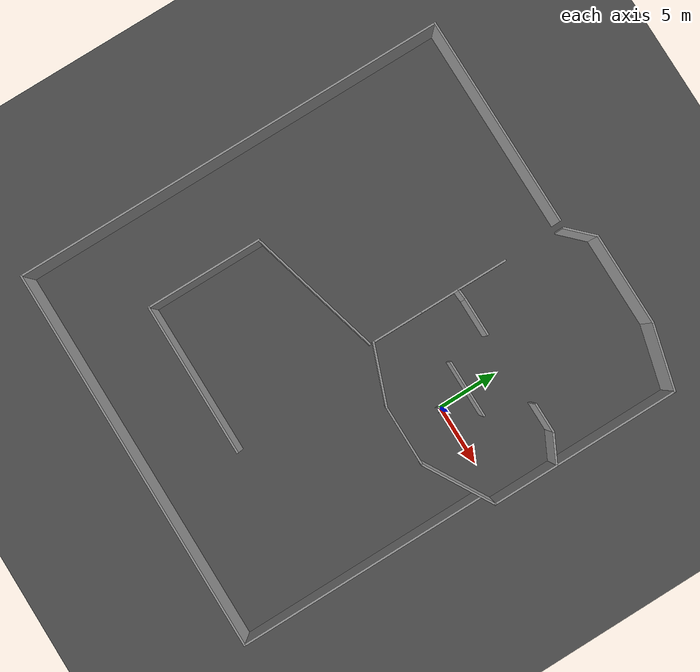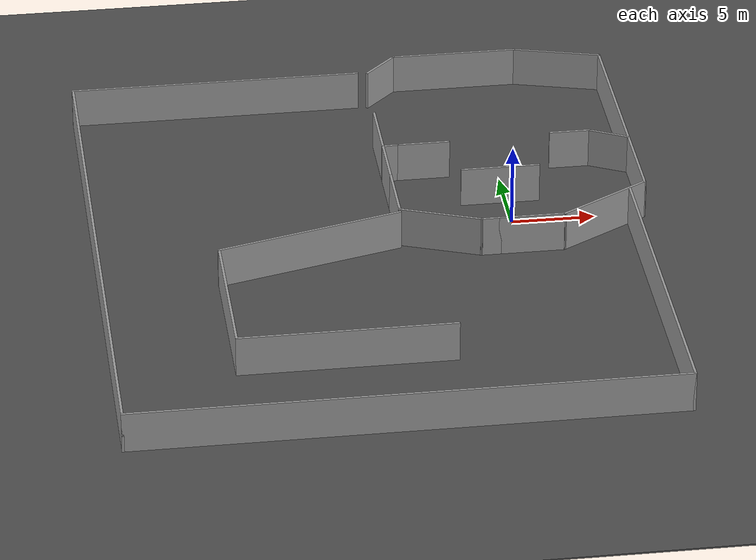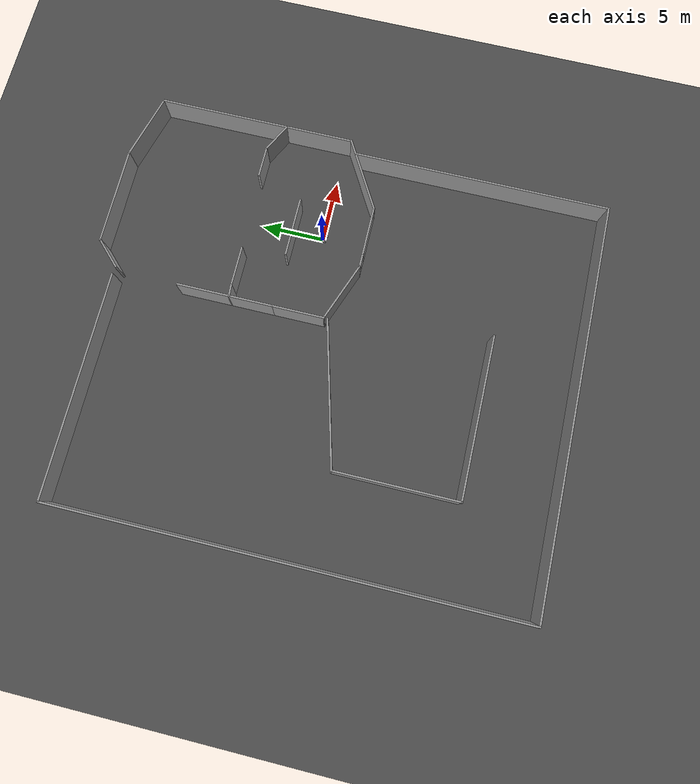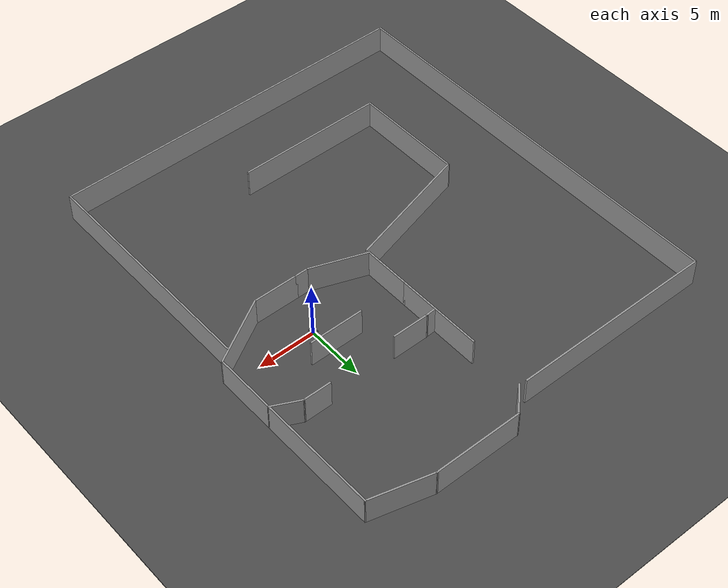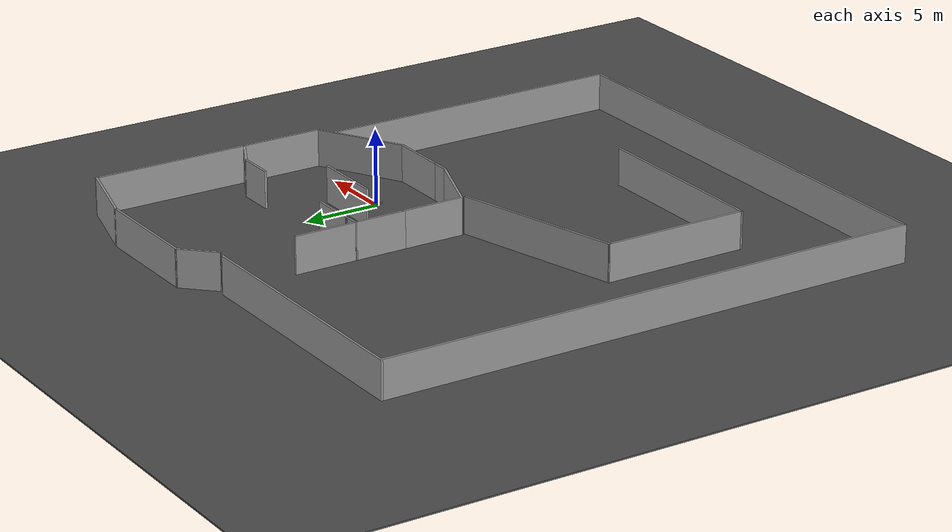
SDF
<sdf version="1.6">
 <world name="default">
  <light name="sun" type="directional">
   <pose>0 0 10 0 -0 0</pose>
   <diffuse>0.8 0.8 0.8 1</diffuse>
   <specular>0.2 0.2 0.2 1</specular>
   <attenuation>
    <range>1000</range>
    <constant>0.9</constant>
    <linear>0.01</linear>
    <quadratic>0.001</quadratic>
   </attenuation>
   <direction>-0.5 0.1 -0.9</direction>
  </light>
  <include><uri>model://maav_matrice</uri><pose>0 0 0.25 0 0 1.57</pose></include>
  <model name="asphalt_plane">
   <static>1</static>
   <link name="link">
    <collision name="collision"><geometry><box><size>200 200 0.1</size></box></geometry></collision>
    <visual name="visual">
     <cast_shadows>0</cast_shadows>
     <geometry><box><size>200 200 0.1</size></box></geometry>
     <material>
      <script>
       <uri>model://asphalt_plane/materials/scripts</uri>
       <uri>model://asphalt_plane/materials/textures</uri>
       <name>vrc/asphalt</name>
      </script>
     </material>
    </visual>
   </link>
  </model>
  <physics name="default_physics" default="0" type="ode">
   <ode>
    <solver>
     <type>quick</type>
     <iters>10</iters>
     <sor>1.3</sor>
     <use_dynamic_moi_rescaling>0</use_dynamic_moi_rescaling>
    </solver>
    <constraints>
     <cfm>0</cfm>
     <erp>0.2</erp>
     <contact_max_correcting_vel>100</contact_max_correcting_vel>
     <contact_surface_layer>0.001</contact_surface_layer>
    </constraints>
   </ode>
   <max_step_size>0.001</max_step_size>
   <real_time_factor>1</real_time_factor>
   <real_time_update_rate>1000</real_time_update_rate>
  </physics>
  <gravity>0 0 -9.8066</gravity>
  <magnetic_field>6e-06 2.3e-05 -4.2e-05</magnetic_field>
  <atmosphere type="adiabatic"/>
  <scene><ambient>0.4 0.4 0.4 1</ambient><background>0.7 0.7 0.7 1</background><shadows>1</shadows></scene>
  <spherical_coordinates>
   <surface_model>EARTH_WGS84</surface_model>
   <latitude_deg>0</latitude_deg>
   <longitude_deg>0</longitude_deg>
   <elevation>0</elevation>
   <heading_deg>0</heading_deg>
  </spherical_coordinates>
  <model name="building-astar">
   <pose>-8.55118 -2.42156 0 0 -0 0</pose>
   <link name="Wall_10">
    <collision name="Wall_10_Collision">
     <geometry><box><size>4.75 0.15 2.5</size></box></geometry>
     <pose>0 0 1.25 0 -0 0</pose>
    </collision>
    <visual name="Wall_10_Visual">
     <pose>0 0 1.25 0 -0 0</pose>
     <geometry><box><size>4.75 0.15 2.5</size></box></geometry>
     <material>
      <script><uri>file://media/materials/scripts/gazebo.material</uri><name>Gazebo/Grey</name></script>
      <ambient>1 1 1 1</ambient>
     </material>
     <meta><layer>0</layer></meta>
    </visual>
    <pose>8.17826 4.71013 0 0 -0 0</pose>
   </link>
   <link name="Wall_12">
    <collision name="Wall_12_Collision">
     <geometry><box><size>4.25 0.15 2.5</size></box></geometry>
     <pose>0 0 1.25 0 -0 0</pose>
    </collision>
    <visual name="Wall_12_Visual">
     <pose>0 0 1.25 0 -0 0</pose>
     <geometry><box><size>4.25 0.15 2.5</size></box></geometry>
     <material>
      <script><uri>file://media/materials/scripts/gazebo.material</uri><name>Gazebo/Grey</name></script>
      <ambient>1 1 1 1</ambient>
     </material>
     <meta><layer>0</layer></meta>
    </visual>
    <pose>1.56027 2.68014 0 0 -0 -1.5708</pose>
   </link>
   <link name="Wall_13">
    <collision name="Wall_13_Collision">
     <geometry><box><size>5.08364 0.15 2.5</size></box></geometry>
     <pose>0 0 1.25 0 -0 0</pose>
    </collision>
    <visual name="Wall_13_Visual">
     <pose>0 0 1.25 0 -0 0</pose>
     <geometry><box><size>5.08364 0.15 2.5</size></box></geometry>
     <material>
      <script><uri>file://media/materials/scripts/gazebo.material</uri><name>Gazebo/Grey</name></script>
      <ambient>1 1 1 1</ambient>
     </material>
     <meta><layer>0</layer></meta>
    </visual>
    <pose>3.87072 -0.234148 0 0 -0 -0.357963</pose>
   </link>
   <link name="Wall_15">
    <collision name="Wall_15_Collision">
     <geometry><box><size>6.25 0.15 2.5</size></box></geometry>
     <pose>0 0 1.25 0 -0 0</pose>
    </collision>
    <visual name="Wall_15_Visual">
     <pose>0 0 1.25 0 -0 0</pose>
     <geometry><box><size>6.25 0.15 2.5</size></box></geometry>
     <material>
      <script><uri>file://media/materials/scripts/gazebo.material</uri><name>Gazebo/Grey</name></script>
      <ambient>1 1 1 1</ambient>
     </material>
     <meta><layer>0</layer></meta>
    </visual>
    <pose>13.7726 0.42656 0 0 -0 0.523599</pose>
   </link>
   <link name="Wall_16">
    <collision name="Wall_16_Collision">
     <geometry><box><size>5.5 0.15 2.5</size></box></geometry>
     <pose>0 0 1.25 0 -0 0</pose>
    </collision>
    <visual name="Wall_16_Visual">
     <pose>0 0 1.25 0 -0 0</pose>
     <geometry><box><size>5.5 0.15 2.5</size></box></geometry>
     <material>
      <script><uri>file://media/materials/scripts/gazebo.material</uri><name>Gazebo/Grey</name></script>
      <ambient>1 1 1 1</ambient>
     </material>
     <meta><layer>0</layer></meta>
    </visual>
    <pose>16.4139 4.62656 0 0 -0 1.5708</pose>
   </link>
   <link name="Wall_18">
    <collision name="Wall_18_Collision">
     <geometry><box><size>2.5 0.15 2.5</size></box></geometry>
     <pose>0 0 1.25 0 -0 0</pose>
    </collision>
    <visual name="Wall_18_Visual">
     <pose>0 0 1.25 0 -0 0</pose>
     <geometry><box><size>2.5 0.15 2.5</size></box></geometry>
     <material>
      <script><uri>file://media/materials/scripts/gazebo.material</uri><name>Gazebo/Grey</name></script>
      <ambient>1 1 1 1</ambient>
     </material>
     <meta><layer>0</layer></meta>
    </visual>
    <pose>13.0075 8.42391 0 0 -0 0</pose>
   </link>
   <link name="Wall_20">
    <collision name="Wall_20_Collision">
     <geometry><box><size>3.25 0.15 2.5</size></box></geometry>
     <pose>0 0 1.25 0 -0 0</pose>
    </collision>
    <visual name="Wall_20_Visual">
     <pose>0 0 1.25 0 -0 0</pose>
     <geometry><box><size>3.25 0.15 2.5</size></box></geometry>
     <material>
      <script><uri>file://media/materials/scripts/gazebo.material</uri><name>Gazebo/Grey</name></script>
      <ambient>1 1 1 1</ambient>
     </material>
     <meta><layer>0</layer></meta>
    </visual>
    <pose>3.98974 8.14248 0 0 -0 0</pose>
   </link>
   <link name="Wall_22">
    <collision name="Wall_22_Collision">
     <geometry><box><size>3.5 0.15 2.5</size></box></geometry>
     <pose>0 0 1.25 0 -0 0</pose>
    </collision>
    <visual name="Wall_22_Visual">
     <pose>0 0 1.25 0 -0 0</pose>
     <geometry><box><size>3.5 0.15 2.5</size></box></geometry>
     <material>
      <script><uri>file://media/materials/scripts/gazebo.material</uri><name>Gazebo/Grey</name></script>
      <ambient>1 1 1 1</ambient>
     </material>
     <meta><layer>0</layer></meta>
    </visual>
    <pose>1.56027 6.40514 0 0 -0 1.5708</pose>
   </link>
   <link name="Wall_23">
    <collision name="Wall_23_Collision">
     <geometry><box><size>1.03168 0.15 2.5</size></box></geometry>
     <pose>0 0 1.25 0 -0 0</pose>
    </collision>
    <visual name="Wall_23_Visual">
     <pose>0 0 1.25 0 -0 0</pose>
     <geometry><box><size>1.03168 0.15 2.5</size></box></geometry>
     <material>
      <script><uri>file://media/materials/scripts/gazebo.material</uri><name>Gazebo/Grey</name></script>
      <ambient>1 1 1 1</ambient>
     </material>
     <meta><layer>0</layer></meta>
    </visual>
    <pose>2.00001 8.11131 0 0 -0 0.070765</pose>
   </link>
   <link name="Wall_25">
    <collision name="Wall_25_Collision">
     <geometry><box><size>2.64782 0.15 2.5</size></box></geometry>
     <pose>0 0 1.25 0 -0 0</pose>
    </collision>
    <visual name="Wall_25_Visual">
     <pose>0 0 1.25 0 -0 0</pose>
     <geometry><box><size>2.64782 0.15 2.5</size></box></geometry>
     <material>
      <script><uri>file://media/materials/scripts/gazebo.material</uri><name>Gazebo/Grey</name></script>
      <ambient>1 1 1 1</ambient>
     </material>
     <meta><layer>0</layer></meta>
    </visual>
    <pose>15.2982 7.86274 0 0 -0 -0.466019</pose>
   </link>
   <link name="Wall_27">
    <collision name="Wall_27_Collision">
     <geometry><box><size>4.25 0.15 2.5</size></box></geometry>
     <pose>0 0 1.25 0 -0 0</pose>
    </collision>
    <visual name="Wall_27_Visual">
     <pose>0 0 1.25 0 -0 0</pose>
     <geometry><box><size>4.25 0.15 2.5</size></box></geometry>
     <material>
      <script><uri>file://media/materials/scripts/gazebo.material</uri><name>Gazebo/Grey</name></script>
      <ambient>1 1 1 1</ambient>
     </material>
     <meta><layer>0</layer></meta>
    </visual>
    <pose>1.56027 10.1301 0 0 -0 1.5708</pose>
   </link>
   <link name="Wall_29">
    <collision name="Wall_29_Collision">
     <geometry><box><size>10.5 0.15 2.5</size></box></geometry>
     <pose>0 0 1.25 0 -0 0</pose>
    </collision>
    <visual name="Wall_29_Visual">
     <pose>0 0 1.25 0 -0 0</pose>
     <geometry><box><size>10.5 0.15 2.5</size></box></geometry>
     <material>
      <script><uri>file://media/materials/scripts/gazebo.material</uri><name>Gazebo/Grey</name></script>
      <ambient>1 1 1 1</ambient>
     </material>
     <meta><layer>0</layer></meta>
    </visual>
    <pose>16.4139 12.4766 0 0 -0 1.5708</pose>
   </link>
   <link name="Wall_30">
    <collision name="Wall_30_Collision">
     <geometry><box><size>5.5 0.15 2.5</size></box></geometry>
     <pose>0 0 1.25 0 -0 0</pose>
    </collision>
    <visual name="Wall_30_Visual">
     <pose>0 0 1.25 0 -0 0</pose>
     <geometry><box><size>5.5 0.15 2.5</size></box></geometry>
     <material>
      <script><uri>file://media/materials/scripts/gazebo.material</uri><name>Gazebo/Grey</name></script>
      <ambient>1 1 1 1</ambient>
     </material>
     <meta><layer>0</layer></meta>
    </visual>
    <pose>13.8301 18.3439 0 0 -0 2.87979</pose>
   </link>
   <link name="Wall_31">
    <collision name="Wall_31_Collision">
     <geometry><box><size>7.75 0.15 2.5</size></box></geometry>
     <pose>0 0 1.25 0 -0 0</pose>
    </collision>
    <visual name="Wall_31_Visual">
     <pose>0 0 1.25 0 -0 0</pose>
     <geometry><box><size>7.75 0.15 2.5</size></box></geometry>
     <material>
      <script><uri>file://media/materials/scripts/gazebo.material</uri><name>Gazebo/Grey</name></script>
      <ambient>1 1 1 1</ambient>
     </material>
     <meta><layer>0</layer></meta>
    </visual>
    <pose>7.44623 19.0362 0 0 -0 3.14159</pose>
   </link>
   <link name="Wall_32">
    <collision name="Wall_32_Collision">
     <geometry><box><size>2.75 0.15 2.5</size></box></geometry>
     <pose>0 0 1.25 0 -0 0</pose>
    </collision>
    <visual name="Wall_32_Visual">
     <pose>0 0 1.25 0 -0 0</pose>
     <geometry><box><size>2.75 0.15 2.5</size></box></geometry>
     <material>
      <script><uri>file://media/materials/scripts/gazebo.material</uri><name>Gazebo/Grey</name></script>
      <ambient>1 1 1 1</ambient>
     </material>
     <meta><layer>0</layer></meta>
    </visual>
    <pose>2.72699 18.117 0 0 -0 -2.35619</pose>
   </link>
   <link name="Wall_34">
    <collision name="Wall_34_Collision">
     <geometry><box><size>17.75 0.15 2.5</size></box></geometry>
     <pose>0 0 1.25 0 -0 0</pose>
    </collision>
    <visual name="Wall_34_Visual">
     <pose>0 0 1.25 0 -0 0</pose>
     <geometry><box><size>17.75 0.15 2.5</size></box></geometry>
     <material>
      <script><uri>file://media/materials/scripts/gazebo.material</uri><name>Gazebo/Grey</name></script>
      <ambient>1 1 1 1</ambient>
     </material>
     <meta><layer>0</layer></meta>
    </visual>
    <pose>-7.64138 17.2827 0 0 -0 3.14159</pose>
   </link>
   <link name="Wall_35">
    <collision name="Wall_35_Collision">
     <geometry><box><size>36.5 0.15 2.5</size></box></geometry>
     <pose>0 0 1.25 0 -0 0</pose>
    </collision>
    <visual name="Wall_35_Visual">
     <pose>0 0 1.25 0 -0 0</pose>
     <geometry><box><size>36.5 0.15 2.5</size></box></geometry>
     <material>
      <script><uri>file://media/materials/scripts/gazebo.material</uri><name>Gazebo/Grey</name></script>
      <ambient>1 1 1 1</ambient>
     </material>
     <meta><layer>0</layer></meta>
    </visual>
    <pose>-16.4414 -0.892306 0 0 -0 -1.5708</pose>
   </link>
   <link name="Wall_36">
    <collision name="Wall_36_Collision">
     <geometry><box><size>32 0.15 2.5</size></box></geometry>
     <pose>0 0 1.25 0 -0 0</pose>
    </collision>
    <visual name="Wall_36_Visual">
     <pose>0 0 1.25 0 -0 0</pose>
     <geometry><box><size>32 0.15 2.5</size></box></geometry>
     <material>
      <script><uri>file://media/materials/scripts/gazebo.material</uri><name>Gazebo/Grey</name></script>
      <ambient>1 1 1 1</ambient>
     </material>
     <meta><layer>0</layer></meta>
    </visual>
    <pose>-0.516381 -19.0673 0 0 -0 0</pose>
   </link>
   <link name="Wall_37">
    <collision name="Wall_37_Collision">
     <geometry><box><size>20.5 0.15 2.5</size></box></geometry>
     <pose>0 0 1.25 0 -0 0</pose>
    </collision>
    <visual name="Wall_37_Visual">
     <pose>0 0 1.25 0 -0 0</pose>
     <geometry><box><size>20.5 0.15 2.5</size></box></geometry>
     <material>
      <script><uri>file://media/materials/scripts/gazebo.material</uri><name>Gazebo/Grey</name></script>
      <ambient>1 1 1 1</ambient>
     </material>
     <meta><layer>0</layer></meta>
    </visual>
    <pose>15.4086 -8.89231 0 0 -0 1.5708</pose>
   </link>
   <link name="Wall_39">
    <collision name="Wall_39_Collision">
     <geometry><box><size>11.5 0.15 2.5</size></box></geometry>
     <pose>0 0 1.25 0 -0 0</pose>
    </collision>
    <visual name="Wall_39_Visual">
     <pose>0 0 1.25 0 -0 0</pose>
     <geometry><box><size>11.5 0.15 2.5</size></box></geometry>
     <material>
      <script><uri>file://media/materials/scripts/gazebo.material</uri><name>Gazebo/Grey</name></script>
      <ambient>1 1 1 1</ambient>
     </material>
     <meta><layer>0</layer></meta>
    </visual>
    <pose>-3.95175 -1.14048 0 0 -0 -2.87979</pose>
   </link>
   <link name="Wall_4">
    <collision name="Wall_4_Collision">
     <geometry><box><size>4 0.15 2.5</size></box></geometry>
     <pose>0 0 1.25 0 -0 0</pose>
    </collision>
    <visual name="Wall_4_Visual">
     <pose>0 0 1.25 0 -0 0</pose>
     <geometry><box><size>4 0.15 2.5</size></box></geometry>
     <material>
      <script><uri>file://media/materials/scripts/gazebo.material</uri><name>Gazebo/Grey</name></script>
      <ambient>1 1 1 1</ambient>
     </material>
     <meta><layer>0</layer></meta>
    </visual>
    <pose>9.20618 -1.09844 0 0 -0 0</pose>
   </link>
   <link name="Wall_40">
    <collision name="Wall_40_Collision">
     <geometry><box><size>9.75 0.15 2.5</size></box></geometry>
     <pose>0 0 1.25 0 -0 0</pose>
    </collision>
    <visual name="Wall_40_Visual">
     <pose>0 0 1.25 0 -0 0</pose>
     <geometry><box><size>9.75 0.15 2.5</size></box></geometry>
     <material>
      <script><uri>file://media/materials/scripts/gazebo.material</uri><name>Gazebo/Grey</name></script>
      <ambient>1 1 1 1</ambient>
     </material>
     <meta><layer>0</layer></meta>
    </visual>
    <pose>-9.43337 -7.40927 0 0 -0 -1.5708</pose>
   </link>
   <link name="Wall_41">
    <collision name="Wall_41_Collision">
     <geometry><box><size>12.75 0.15 2.5</size></box></geometry>
     <pose>0 0 1.25 0 -0 0</pose>
    </collision>
    <visual name="Wall_41_Visual">
     <pose>0 0 1.25 0 -0 0</pose>
     <geometry><box><size>12.75 0.15 2.5</size></box></geometry>
     <material>
      <script><uri>file://media/materials/scripts/gazebo.material</uri><name>Gazebo/Grey</name></script>
      <ambient>1 1 1 1</ambient>
     </material>
     <meta><layer>0</layer></meta>
    </visual>
    <pose>-3.13338 -12.2093 0 0 -0 0</pose>
   </link>
   <link name="Wall_6">
    <collision name="Wall_6_Collision">
     <geometry><box><size>1.25 0.15 2.5</size></box></geometry>
     <pose>0 0 1.25 0 -0 0</pose>
    </collision>
    <visual name="Wall_6_Visual">
     <pose>0 0 1.25 0 -0 0</pose>
     <geometry><box><size>1.25 0.15 2.5</size></box></geometry>
     <material>
      <script><uri>file://media/materials/scripts/gazebo.material</uri><name>Gazebo/Grey</name></script>
      <ambient>1 1 1 1</ambient>
     </material>
     <meta><layer>0</layer></meta>
    </visual>
    <pose>6.73118 -1.09844 0 0 -0 3.14159</pose>
   </link>
   <static>1</static>
  </model>
 </world>
</sdf>

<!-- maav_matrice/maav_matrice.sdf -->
<sdf version="1.6">

  <model name="MaavMatrice">

    <pose>0 0 0.2 0 0 0</pose>

    <self_collide>false</self_collide>

    <static>false</static>

    <plugin name="VehiclePlugin" filename="libMaavVehiclePlugin.so">
      <imu>
        <model_name>MaavImu</model_name>
        <joint_name>MaavImuJoint</joint_name>
      </imu>
    </plugin>

    <!--                    Maav Sensors                            -->

    <model name="SLAM Camera">
      <include>
        <uri>model://t265</uri>
        <pose>0.155 0 0.05 0 0 0</pose>
      </include>
    </model>

    <joint name="SLAM Camera Joint" type="fixed">
      <parent>fuselage</parent>
      <child>MaavMatrice::SLAM Camera::T265::link</child>
    </joint>

    <model name="Forward Camera">
      <include>
        <uri>model://d435</uri>
        <pose>0.155 0 0.0 0 0.4 0</pose>
      </include>
    </model>

    <joint name="Forward Camera Joint" type="fixed">
      <parent>fuselage</parent>
      <child>MaavMatrice::Forward Camera::D435::link</child>
    </joint>

    <model name="Downward Camera">
      <include>
        <uri>model://d435</uri>
        <pose>0.1 0.0 -0.0125 0 1.57 0</pose>
      </include>
      <plugin name='planefit_plugin' filename='libMaavPlanefitPlugin.so'></plugin>
    </model>

    <joint name="Downward Camera Joint" type="fixed">
      <parent>fuselage</parent>
      <child>MaavMatrice::Downward Camera::D435::link</child>
    </joint>

    <model name="Height Lidar">
      <include>
        <uri>model://lidar_lite</uri>
        <pose>-0.04 -0.15 -0.0175 0 1.57 0</pose>
      </include>
    </model>

    <joint name="Height Lidar Joint" type="fixed">
      <parent>fuselage</parent>
      <child>MaavMatrice::Height Lidar::LidarLite::link</child>
    </joint>

    <plugin name='ImuPlugin' filename='libMaavImuPlugin.so'>
      <robotNamespace></robotNamespace>
      <linkName>fuselage</linkName>
      <imuTopic>/imu</imuTopic>
      <gyroscopeNoiseDensity>0.005235987756</gyroscopeNoiseDensity>
      <gyroscopeRandomWalk>0.00000002424068406</gyroscopeRandomWalk>
      <gyroscopeBiasCorrelationTime>1000.0</gyroscopeBiasCorrelationTime>
      <gyroscopeTurnOnBiasSigma>0.00436332313</gyroscopeTurnOnBiasSigma>
      <accelerometerNoiseDensity>0.00784532</accelerometerNoiseDensity>
      <accelerometerRandomWalk>0.0000001089627778</accelerometerRandomWalk>
      <accelerometerBiasCorrelationTime>300.0</accelerometerBiasCorrelationTime>
      <accelerometerTurnOnBiasSigma>0.0196133</accelerometerTurnOnBiasSigma>
      <frequency>200</frequency>

    </plugin>

    <!--                    Vehicle Dynamics                        -->

    <link name="fuselage">
      <inertial>
        <mass>2</mass>
        <inertia>
          <ixx>0.0216666666667</ixx>
          <iyy>0.0216666666667</iyy>
          <izz>0.04</izz>
        </inertia>
      </inertial>

      <gravity>true</gravity>
      <self_collide>false</self_collide>
      <velocity_decay/>

      <visual name="fuselage_visual">
        <geometry>
          <mesh>
            <scale>1 1 1</scale>
            <uri>model://maav_matrice/meshes/Matrice_100.dae</uri>
          </mesh>
        </geometry>
      </visual>

      <collision name="fuselage_collision">
        <pose>0 0 0 0 0 0</pose>
        <geometry>
          <mesh>
            <scale>1 1 1</scale>
            <uri>model://maav_matrice/meshes/Matrice_100_collision.dae</uri>
          </mesh>
        </geometry>
        <surface>
          <contact>
            <ode>
              <min_depth>0.001</min_depth>
              <max_vel>0</max_vel>
            </ode>
          </contact>
          <friction>
            <ode>
              <mu>1</mu>
              <mu2>1</mu2>
              <fdir1>0 0 0</fdir1>
              <slip1>0</slip1>
              <slip2>0</slip2>
            </ode>
            <torsional>
              <coefficient>1</coefficient>
              <patch_radius>0</patch_radius>
              <surface_radius>0</surface_radius>
              <use_patch_radius>1</use_patch_radius>
              <ode>
                <slip>0</slip>
              </ode>
            </torsional>
          </friction>
        </surface>
      </collision>
    </link>

    <!--Rotor 0 -->
    <link name="rotor_0">

      <gravity>true</gravity>
      <self_collide>false</self_collide>
      <velocity_decay/>

      <pose>0.229809703886 -0.229809703886 0.06 0 0 0</pose>
      <inertial>
        <mass>0.019</mass>
        <inertia>
          <ixx>6.34916666667e-07</ixx>
          <iyy>4.31078333333e-05</iyy>
          <izz>4.37395833333e-05</izz>
        </inertia>
      </inertial>
      <visual name="rotor_0_visual">
        <pose>0 0 0 0 0 0</pose>
        <geometry>
          <mesh>
            <scale>1 1 1</scale>
            <uri>model://matrice_100/meshes/dji_13455_prop_ccw.dae</uri>
          </mesh>
        </geometry>
        <material>
          <script>
            <name>Gazebo/DarkGrey</name>
            <uri>file://media/materials/scripts/gazebo.material</uri>
          </script>
        </material>
      </visual>

      <collision name="rotor_0_collision">
        <pose>0 0 0 0 0 0 </pose>
        <geometry>
          <box>
            <size>0.33 0.02 0.001</size>
          </box>
        </geometry>
        <surface>
          <contact>
            <ode>
              <min_depth>0.001</min_depth>
              <max_vel>0</max_vel>
            </ode>
          </contact>
          <friction>
            <ode/>
          </friction>
        </surface>
      </collision>

    </link>

    <joint name="rotor_0_joint" type="revolute">
      <parent>fuselage</parent>
      <child>rotor_0</child>
      <axis>
        <xyz>0 0 1</xyz>
        <limit>
          <lower>-1e+16</lower>
          <upper>1e+16</upper>
        </limit>
        <dynamics>
          <spring_reference>0</spring_reference>
          <spring_stiffness>0</spring_stiffness>
        </dynamics>
        <use_parent_model_frame>1</use_parent_model_frame>
      </axis>
    </joint>

    <plugin name='rotor_0_motor_model' filename='libgazebo_motor_model.so'>
      <robotNamespace></robotNamespace>
      <jointName>rotor_0_joint</jointName>
      <linkName>rotor_0</linkName>
      <turningDirection>ccw</turningDirection>
      <timeConstantUp>0.0125</timeConstantUp>
      <timeConstantDown>0.025</timeConstantDown>
      <maxRotVelocity>1100</maxRotVelocity>
      <motorConstant>8.54858e-06</motorConstant>
      <momentConstant>0.06</momentConstant>
      <commandSubTopic>/gazebo/command/motor_speed</commandSubTopic>
      <motorNumber>0</motorNumber>
      <rotorDragCoefficient>0.000806428</rotorDragCoefficient>
      <rollingMomentCoefficient>7.50302e-6</rollingMomentCoefficient>
      <motorSpeedPubTopic>/motor_speed/0</motorSpeedPubTopic>
      <rotorVelocitySlowdownSim>10</rotorVelocitySlowdownSim>
    </plugin>

    <!--Rotor 1 -->
    <link name="rotor_1">

      <gravity>true</gravity>
      <self_collide>false</self_collide>
      <velocity_decay/>

      <pose>-0.229809703886 0.229809703886 0.06 0 0 0</pose>
      <inertial>
        <mass>0.019</mass>
        <inertia>
          <ixx>6.34916666667e-07</ixx>
          <iyy>4.31078333333e-05</iyy>
          <izz>4.37395833333e-05</izz>
        </inertia>
      </inertial>
      <visual name="rotor_1_visual">
        <pose>0 0 0 0 0 0</pose>
        <geometry>
          <mesh>
            <scale>1 1 1</scale>
            <uri>model://matrice_100/meshes/dji_13455_prop_ccw.dae</uri>
          </mesh>
        </geometry>
        <material>
          <script>
            <name>Gazebo/DarkGrey</name>
            <uri>file://media/materials/scripts/gazebo.material</uri>
          </script>
        </material>
      </visual>

      <collision name="rotor_1_collision">
        <pose>0 0 0 0 0 0 </pose>
        <geometry>
          <box>
            <size>0.33 0.02 0.001</size>
          </box>
        </geometry>
        <surface>
          <contact>
            <ode>
              <min_depth>0.001</min_depth>
              <max_vel>0</max_vel>
            </ode>
          </contact>
          <friction>
            <ode/>
          </friction>
        </surface>
      </collision>

    </link>

    <joint name="rotor_1_joint" type="revolute">
      <parent>fuselage</parent>
      <child>rotor_1</child>
      <axis>
        <xyz>0 0 1</xyz>
        <limit>
          <lower>-1e+16</lower>
          <upper>1e+16</upper>
        </limit>
        <dynamics>
          <spring_reference>0</spring_reference>
          <spring_stiffness>0</spring_stiffness>
        </dynamics>
        <use_parent_model_frame>1</use_parent_model_frame>
      </axis>
    </joint>

    <plugin name='rotor_1_motor_model' filename='libgazebo_motor_model.so'>
      <robotNamespace></robotNamespace>
      <jointName>rotor_1_joint</jointName>
      <linkName>rotor_1</linkName>
      <turningDirection>ccw</turningDirection>
      <timeConstantUp>0.0125</timeConstantUp>
      <timeConstantDown>0.025</timeConstantDown>
      <maxRotVelocity>1100</maxRotVelocity>
      <motorConstant>8.54858e-06</motorConstant>
      <momentConstant>0.06</momentConstant>
      <commandSubTopic>/gazebo/command/motor_speed</commandSubTopic>
      <motorNumber>1</motorNumber>
      <rotorDragCoefficient>0.000806428</rotorDragCoefficient>
      <rollingMomentCoefficient>7.50302e-6</rollingMomentCoefficient>
      <motorSpeedPubTopic>/motor_speed/1</motorSpeedPubTopic>
      <rotorVelocitySlowdownSim>10</rotorVelocitySlowdownSim>
    </plugin>

    <!--Rotor 2 -->
    <link name="rotor_2">

      <gravity>true</gravity>
      <self_collide>false</self_collide>
      <velocity_decay/>

      <pose>0.229809703886 0.229809703886 0.06 0 0 0</pose>
      <inertial>
        <mass>0.019</mass>
        <inertia>
          <ixx>6.34916666667e-07</ixx>
          <iyy>4.31078333333e-05</iyy>
          <izz>4.37395833333e-05</izz>
        </inertia>
      </inertial>
      <visual name="rotor_2_visual">
        <pose>0 0 0 0 0 0</pose>
        <geometry>
          <mesh>
            <scale>1 1 1</scale>
            <uri>model://matrice_100/meshes/dji_13455_prop_cw.dae</uri>
          </mesh>
        </geometry>
        <material>
          <script>
            <name>Gazebo/DarkGrey</name>
            <uri>file://media/materials/scripts/gazebo.material</uri>
          </script>
        </material>
      </visual>

      <collision name="rotor_2_collision">
        <pose>0 0 0 0 0 0 </pose>
        <geometry>
          <box>
            <size>0.33 0.02 0.001</size>
          </box>
        </geometry>
        <surface>
          <contact>
            <ode>
              <min_depth>0.001</min_depth>
              <max_vel>0</max_vel>
            </ode>
          </contact>
          <friction>
            <ode/>
          </friction>
        </surface>
      </collision>

    </link>

    <joint name="rotor_2_joint" type="revolute">
      <parent>fuselage</parent>
      <child>rotor_2</child>
      <axis>
        <xyz>0 0 1</xyz>
        <limit>
          <lower>-1e+16</lower>
          <upper>1e+16</upper>
        </limit>
        <dynamics>
          <spring_reference>0</spring_reference>
          <spring_stiffness>0</spring_stiffness>
        </dynamics>
        <use_parent_model_frame>1</use_parent_model_frame>
      </axis>
    </joint>

    <plugin name='rotor_2_motor_model' filename='libgazebo_motor_model.so'>
      <robotNamespace></robotNamespace>
      <jointName>rotor_2_joint</jointName>
      <linkName>rotor_2</linkName>
      <turningDirection>cw</turningDirection>
      <timeConstantUp>0.0125</timeConstantUp>
      <timeConstantDown>0.025</timeConstantDown>
      <maxRotVelocity>1100</maxRotVelocity>
      <motorConstant>8.54858e-06</motorConstant>
      <momentConstant>0.06</momentConstant>
      <commandSubTopic>/gazebo/command/motor_speed</commandSubTopic>
      <motorNumber>2</motorNumber>
      <rotorDragCoefficient>0.000806428</rotorDragCoefficient>
      <rollingMomentCoefficient>7.50302e-6</rollingMomentCoefficient>
      <motorSpeedPubTopic>/motor_speed/2</motorSpeedPubTopic>
      <rotorVelocitySlowdownSim>10</rotorVelocitySlowdownSim>
    </plugin>

    <!--Rotor 3 -->
    <link name="rotor_3">

      <gravity>true</gravity>
      <self_collide>false</self_collide>
      <velocity_decay/>

      <pose>-0.229809703886 -0.229809703886 0.06 0 0 0</pose>
      <inertial>
        <mass>0.019</mass>
        <inertia>
          <ixx>6.34916666667e-07</ixx>
          <iyy>4.31078333333e-05</iyy>
          <izz>4.37395833333e-05</izz>
        </inertia>
      </inertial>
      <visual name="rotor_3_visual">
        <pose>0 0 0 0 0 0</pose>
        <geometry>
          <mesh>
            <scale>1 1 1</scale>
            <uri>model://matrice_100/meshes/dji_13455_prop_cw.dae</uri>
          </mesh>
        </geometry>
        <material>
          <script>
            <name>Gazebo/DarkGrey</name>
            <uri>file://media/materials/scripts/gazebo.material</uri>
          </script>
        </material>
      </visual>

      <collision name="rotor_3_collision">
        <pose>0 0 0 0 0 0 </pose>
        <geometry>
          <box>
            <size>0.33 0.02 0.001</size>
          </box>
        </geometry>
        <surface>
          <contact>
            <ode>
              <min_depth>0.001</min_depth>
              <max_vel>0</max_vel>
            </ode>
          </contact>
          <friction>
            <ode/>
          </friction>
        </surface>
      </collision>

    </link>

    <joint name="rotor_3_joint" type="revolute">
      <parent>fuselage</parent>
      <child>rotor_3</child>
      <axis>
        <xyz>0 0 1</xyz>
        <limit>
          <lower>-1e+16</lower>
          <upper>1e+16</upper>
        </limit>
        <dynamics>
          <spring_reference>0</spring_reference>
          <spring_stiffness>0</spring_stiffness>
        </dynamics>
        <use_parent_model_frame>1</use_parent_model_frame>
      </axis>
    </joint>

    <plugin name='rotor_3_motor_model' filename='libgazebo_motor_model.so'>
      <robotNamespace></robotNamespace>
      <jointName>rotor_3_joint</jointName>
      <linkName>rotor_3</linkName>
      <turningDirection>cw</turningDirection>
      <timeConstantUp>0.0125</timeConstantUp>
      <timeConstantDown>0.025</timeConstantDown>
      <maxRotVelocity>1100</maxRotVelocity>
      <motorConstant>8.54858e-06</motorConstant>
      <momentConstant>0.06</momentConstant>
      <commandSubTopic>/gazebo/command/motor_speed</commandSubTopic>
      <motorNumber>3</motorNumber>
      <rotorDragCoefficient>0.000806428</rotorDragCoefficient>
      <rollingMomentCoefficient>7.50302e-6</rollingMomentCoefficient>
      <motorSpeedPubTopic>/motor_speed/3</motorSpeedPubTopic>
      <rotorVelocitySlowdownSim>10</rotorVelocitySlowdownSim>
    </plugin>

    <plugin name="gps_plugin" filename="libgazebo_gps_plugin.so">
      <robotNamespace></robotNamespace>
      <gpsNoise>true</gpsNoise>
    </plugin>

    <plugin name='mavlink_interface' filename='libgazebo_mavlink_interface.so'>
      <robotNamespace/>
      <imuSubTopic>/imu</imuSubTopic>
      <gpsSubTopic>/gps</gpsSubTopic>
      <mavlink_addr>INADDR_ANY</mavlink_addr>
      <mavlink_udp_port>14560</mavlink_udp_port>
      <serialEnabled>0</serialEnabled>
      <serialDevice>/dev/ttyACM0</serialDevice>
      <baudRate>921600</baudRate>
      <qgc_addr>INADDR_ANY</qgc_addr>
      <qgc_udp_port>14550</qgc_udp_port>
      <hil_mode>0</hil_mode>
      <hil_state_level>0</hil_state_level>
      <vehicle_is_tailsitter>0</vehicle_is_tailsitter>
      <send_odometry>0</send_odometry>
      <motorSpeedCommandPubTopic>/gazebo/command/motor_speed</motorSpeedCommandPubTopic>
      <control_channels>
        <channel name='rotor1'>
          <input_index>0</input_index>
          <input_offset>0</input_offset>
          <input_scaling>1000</input_scaling>
          <zero_position_disarmed>0</zero_position_disarmed>
          <zero_position_armed>100</zero_position_armed>
          <joint_control_type>velocity</joint_control_type>
        </channel>
        <channel name='rotor2'>
          <input_index>1</input_index>
          <input_offset>0</input_offset>
          <input_scaling>1000</input_scaling>
          <zero_position_disarmed>0</zero_position_disarmed>
          <zero_position_armed>100</zero_position_armed>
          <joint_control_type>velocity</joint_control_type>
        </channel>
        <channel name='rotor3'>
          <input_index>2</input_index>
          <input_offset>0</input_offset>
          <input_scaling>1000</input_scaling>
          <zero_position_disarmed>0</zero_position_disarmed>
          <zero_position_armed>100</zero_position_armed>
          <joint_control_type>velocity</joint_control_type>
        </channel>
        <channel name='rotor4'>
          <input_index>3</input_index>
          <input_offset>0</input_offset>
          <input_scaling>1000</input_scaling>
          <zero_position_disarmed>0</zero_position_disarmed>
          <zero_position_armed>100</zero_position_armed>
          <joint_control_type>velocity</joint_control_type>
        </channel>
        <channel name='rotor5'>
          <input_index>4</input_index>
          <input_offset>1</input_offset>
          <input_scaling>324.6</input_scaling>
          <zero_position_disarmed>0</zero_position_disarmed>
          <zero_position_armed>0</zero_position_armed>
          <joint_control_type>velocity</joint_control_type>
          <joint_control_pid>
            <p>0.1</p>
            <i>0</i>
            <d>0</d>
            <iMax>0.0</iMax>
            <iMin>0.0</iMin>
            <cmdMax>2</cmdMax>
            <cmdMin>-2</cmdMin>
          </joint_control_pid>
          <joint_name>zephyr_delta_wing::propeller_joint</joint_name>
        </channel>
        <channel name='rotor6'>
          <input_index>5</input_index>
          <input_offset>0</input_offset>
          <input_scaling>0.524</input_scaling>
          <zero_position_disarmed>0</zero_position_disarmed>
          <zero_position_armed>0</zero_position_armed>
          <joint_control_type>position</joint_control_type>
          <joint_name>zephyr_delta_wing::flap_left_joint</joint_name>
          <joint_control_pid>
            <p>10.0</p>
            <i>0</i>
            <d>0</d>
            <iMax>0</iMax>
            <iMin>0</iMin>
            <cmdMax>20</cmdMax>
            <cmdMin>-20</cmdMin>
          </joint_control_pid>
        </channel>
        <channel name='rotor7'>
          <input_index>6</input_index>
          <input_offset>0</input_offset>
          <input_scaling>0.524</input_scaling>
          <zero_position_disarmed>0</zero_position_disarmed>
          <zero_position_armed>0</zero_position_armed>
          <joint_control_type>position</joint_control_type>
          <joint_name>zephyr_delta_wing::flap_right_joint</joint_name>
          <joint_control_pid>
            <p>10.0</p>
            <i>0</i>
            <d>0</d>
            <iMax>0</iMax>
            <iMin>0</iMin>
            <cmdMax>20</cmdMax>
            <cmdMin>-20</cmdMin>
          </joint_control_pid>
        </channel>
        <channel name='rotor8'>
          <input_index>7</input_index>
          <input_offset>0</input_offset>
          <input_scaling>0.524</input_scaling>
          <zero_position_disarmed>0</zero_position_disarmed>
          <zero_position_armed>0</zero_position_armed>
          <joint_control_type>position</joint_control_type>
        </channel>
      </control_channels>
    </plugin>

    <plugin name='gazebo_imu_plugin' filename='libgazebo_imu_plugin.so'>
      <robotNamespace></robotNamespace>
      <linkName>fuselage</linkName>
      <imuTopic>/imu</imuTopic>
      <gyroscopeNoiseDensity>0.0003394</gyroscopeNoiseDensity>
      <gyroscopeRandomWalk>3.8785e-05</gyroscopeRandomWalk>
      <gyroscopeBiasCorrelationTime>1000.0</gyroscopeBiasCorrelationTime>
      <gyroscopeTurnOnBiasSigma>0.0087</gyroscopeTurnOnBiasSigma>
      <accelerometerNoiseDensity>0.004</accelerometerNoiseDensity>
      <accelerometerRandomWalk>0.006</accelerometerRandomWalk>
      <accelerometerBiasCorrelationTime>300.0</accelerometerBiasCorrelationTime>
      <accelerometerTurnOnBiasSigma>0.196</accelerometerTurnOnBiasSigma>
    </plugin>
  </model>
</sdf>

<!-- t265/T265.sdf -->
<sdf version='1.6'>
  <model name='T265'>
    <plugin name='TrackingPlugin' filename='libRealsenseT265Plugin.so'></plugin>
    <pose frame="">0 0 0.015 0 0 0</pose>
    <link name="link">
      <inertial>
        <mass>0.07</mass>
        <inertia>
          <ixx>0.0000508</ixx>
          <iyy>0.00000729167</iyy>
          <izz>0.0000508</izz>
        </inertia>
        <pose frame=''>0 0 0 0 -0 0</pose>
      </inertial>
      <self_collide>0</self_collide>
      <enable_wind>0</enable_wind>
      <kinematic>0</kinematic>
      <gravity>1</gravity>
      <visual name="visual">
        <geometry>
          <mesh>
            <uri>model://t265/meshes/t265.dae</uri>
          </mesh>
        </geometry>
        <pose>0 0 0 0 0 1.57</pose>
      </visual>
      <sensor name="camera" type="camera">
        <pose frame="">0 0.03 0.00 0 0 0</pose>
        <camera name="__default__">
          <always_on>1</always_on>
          <update_rate>30</update_rate>
        </camera>
        <visualize>1</visualize>
      </sensor>
    </link>
  </model>
</sdf>

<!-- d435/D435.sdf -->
<sdf version='1.6'>
  <model name='D435'>
    <pose frame="">0 0 0.015 0 0 0</pose>
    <link name="link">
      <inertial>
        <mass>0.07</mass>
        <inertia>
          <ixx>0.0000508</ixx>
          <iyy>0.00000729167</iyy>
          <izz>0.0000508</izz>
        </inertia>
        <pose frame=''>0 0 0 0 -0 0</pose>
      </inertial>
      <self_collide>0</self_collide>
      <enable_wind>0</enable_wind>
      <kinematic>0</kinematic>
      <gravity>1</gravity>
      <visual name="visual">
        <geometry>
          <mesh>
            <uri>model://d435/meshes/d435.dae</uri>
          </mesh>
        </geometry>
        <pose>0 0 0 0 0 1.57</pose>
      </visual>
      <sensor name="color" type="camera">
        <pose frame="">0 0.03 0.00 0 0 0</pose>
        <camera name="__default__">
          <horizontal_fov>1.047</horizontal_fov>
          <image>
            <width>640</width>
            <height>480</height>
            <format>RGB_INT8</format>
          </image>
          <clip>
            <near>0.1</near>
            <far>100</far>
          </clip>
          <noise>
            <type>gaussian</type>
            <mean>0.0</mean>
            <stddev>0.007</stddev>
          </noise>
        </camera>
        <always_on>1</always_on>
        <update_rate>15</update_rate>
        <visualize>1</visualize>
      </sensor>
      <sensor name="depth" type="depth">
        <pose frame="">0 0.03 0.00 0 0 0</pose>
        <camera name="camera">
          <horizontal_fov>1.047</horizontal_fov>
          <image>
            <width>640</width>
            <height>480</height>
          </image>
          <clip>
            <near>0.1</near>
            <far>100</far>
          </clip>
          <noise>
            <type>gaussian</type>
            <mean>0.0</mean>
            <stddev>0.007</stddev>
          </noise>
          <depth_camera>
            <output>points</output>
          </depth_camera>
        </camera>
        <always_on>1</always_on>
        <update_rate>15</update_rate>
        <visualize>0</visualize>
        <plugin name="MaavCameraPlugin" filename="libMaavCameraPlugin.so"></plugin>
      </sensor>
    </link>
  </model>
</sdf>

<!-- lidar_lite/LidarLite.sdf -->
<sdf version='1.6'>
  <model name='LidarLite'>
    <link name="link">
      <inertial>
        <mass>0.027</mass>
        <inertia>
          <ixx>0.00000597</ixx>
          <iyy>0.00000867</iyy>
          <izz>0.0000045</izz>
        </inertia>
        <pose frame=''>0 0 0 0 -0 0</pose>
      </inertial>
      <self_collide>0</self_collide>
      <enable_wind>0</enable_wind>
      <kinematic>0</kinematic>
      <gravity>1</gravity>
      <visual name="visual">
        <pose>0 0 0 0 1.57 0</pose>
        <geometry>
          <mesh>
            <uri>model://lidar_lite/meshes/LidarLite.dae</uri>
          </mesh>
        </geometry>
      </visual>
      <sensor name='maav_lidar' type='ray'>
        <always_on>true</always_on>
        <update_rate>50</update_rate>
        <visualize>true</visualize>
        <pose>0.00 0 0 0 0 0</pose>
        <ray>
          <scan>
            <horizontal>
              <samples>2</samples>
              <resolution>1</resolution>
              <min_angle>0</min_angle>
              <max_angle>0</max_angle>
            </horizontal>
            <vertical>
              <samples>2</samples>
              <resolution>1</resolution>
              <min_angle>-0</min_angle>
              <max_angle>0</max_angle>
            </vertical>
          </scan>
          <range>
            <min>0.03</min>
            <max>10</max>
            <resolution>0.01</resolution>
          </range>
        </ray>
        <plugin name="maav_lidar_plugin" filename="libMaavLidarPlugin.so">
          <noise_density>0.02</noise_density>
          <bias_mean>0.09</bias_mean>
          <bias_std>0.01</bias_std>
          <outlier_mean>9.99</outlier_mean>
          <outlier_std>1</outlier_std>
          <outlier_freq>150</outlier_freq>
          <outlier_chi>1</outlier_chi>
        </plugin>
      </sensor>
    </link>
  </model>
</sdf>
